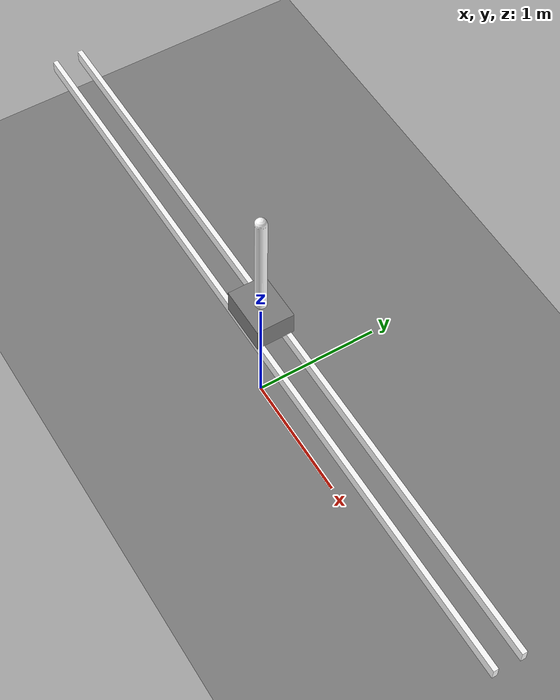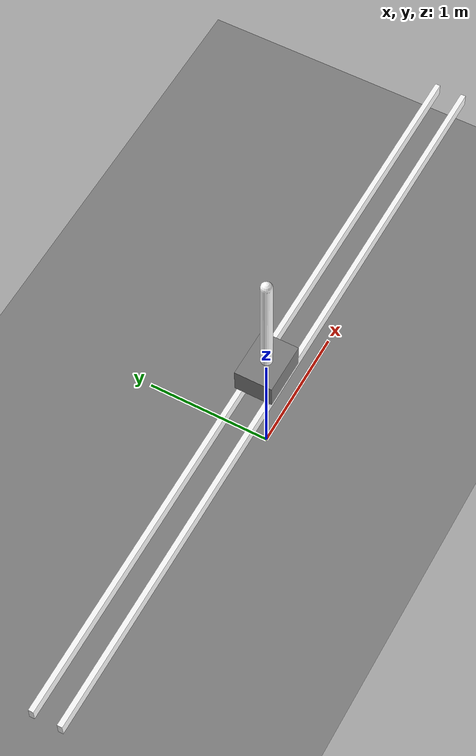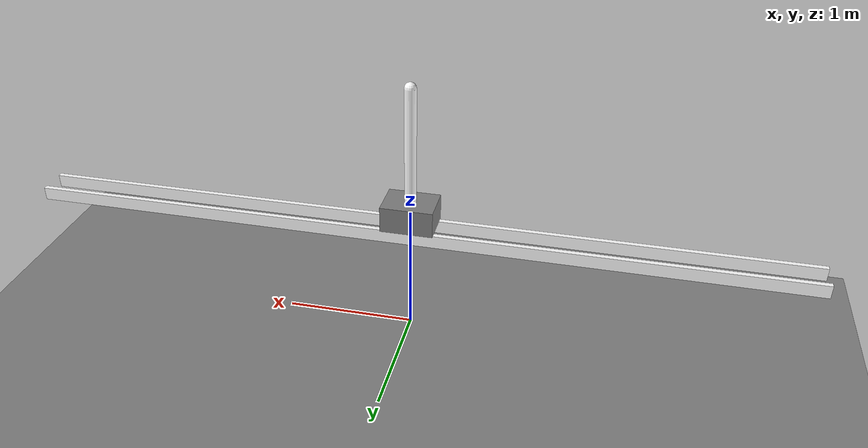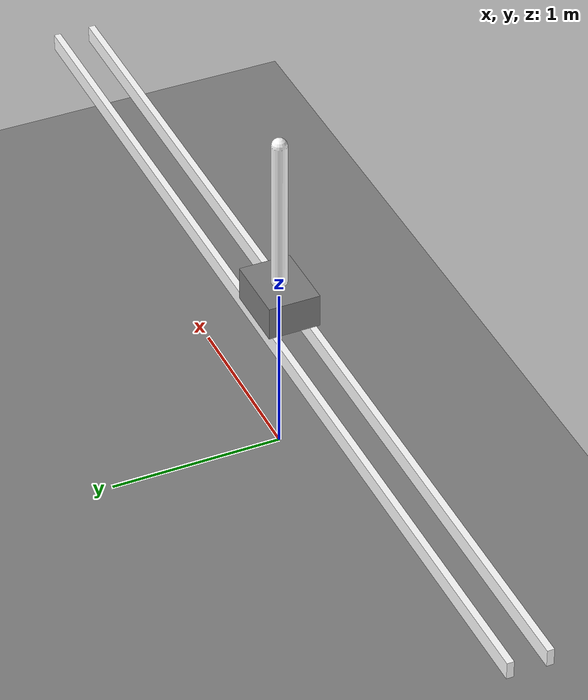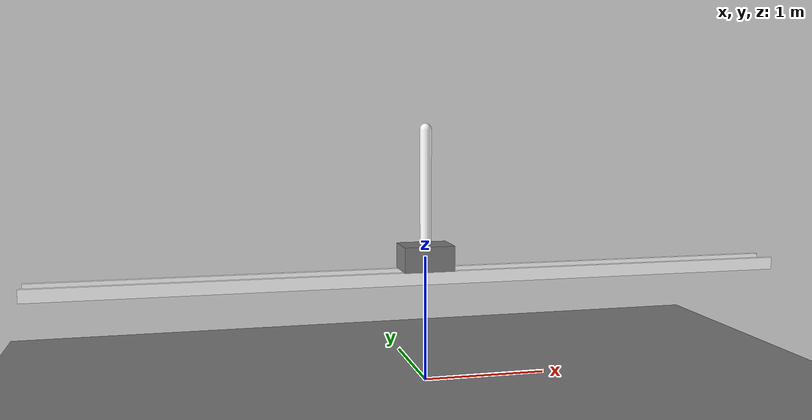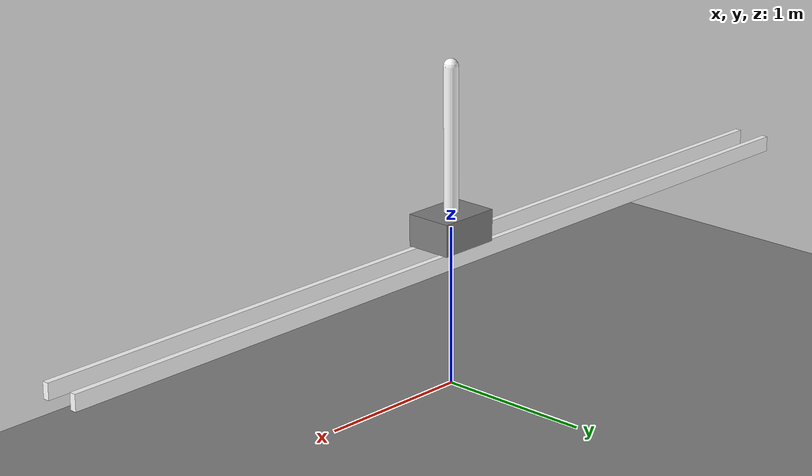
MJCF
<mujoco model="cart-pole">

  <option timestep="0.01" integrator="RK4"
          gravity="0 0 -9.81" wind="0 0 0"
          density="1.2" viscosity="0.00002">
    <flag contact="disable" energy="enable"/>
  </option>

  <asset>
      <material name="wood"/>

      <texture name="skybox" type="skybox" builtin="gradient" rgb1=".4 .6 .8" rgb2="0 0 0"
               width="1600" height="1600" mark="random" markrgb="1 1 1"/>

      <material name="rail" />
  </asset>

  <visual>
    <headlight />
    <rgba />
  </visual>

  <default>
    <default class="pole_1">
      <joint type="hinge" axis="0 1 0"  damping="2e-6" />
      <geom type="capsule" fromto="0 0 0 0 0 1" size="0.045" mass="1" material="wood" />
    </default>
  </default>

  <worldbody>
    <camera name="fixed" pos="0 -5 3" zaxis="0 -1 0" />
    <light name="light" pos="0 0 6" />
    <geom name="floor" pos="0 0 -.05" size="3.5 3.5 .2" type="plane" />
    <geom name="rail_1" type="box" pos="0  .11 .85" size="3 0.02 0.05" material="rail" />
    <geom name="rail_2" type="box" pos="0 -.11 .85" size="3 0.02 0.05" material="rail" />

    <body name="cart" pos="0 0 1">
      <joint name="slider" type="slide" limited="true" axis="1 0 0" range="-2.4 2.4" solreflimit=".08 1" damping="5e-4" />
      <geom name="cart" type="box" size="0.2 0.15 0.1" mass=".001" />
      <body name="pole_1" childclass="pole_1">
        <joint name="hinge_1" />
        <geom name="pole_1" />
      </body>
    </body>
  </worldbody>

  <sensor>
    <jointpos name="slider" joint="slider" />
    <jointpos name="hinge_1" joint="hinge_1" />
  </sensor>
  <actuator>
    <motor name="slide" joint="slider" gear="10" ctrllimited="true" ctrlrange="-1 1" />
  </actuator>
</mujoco>
